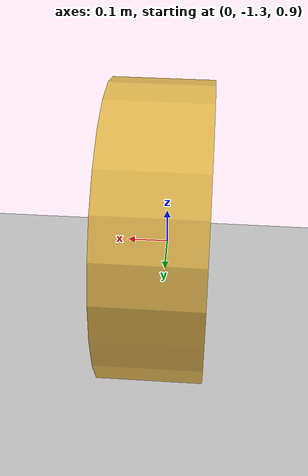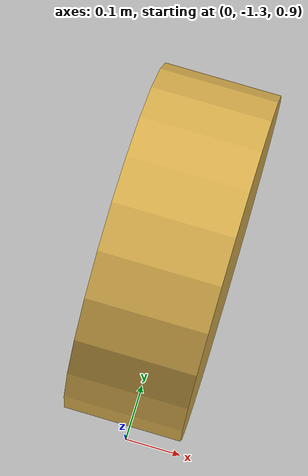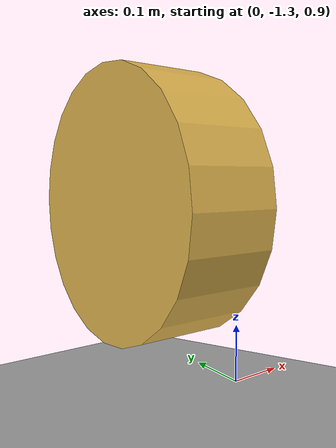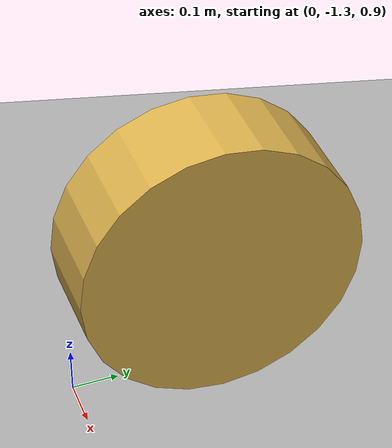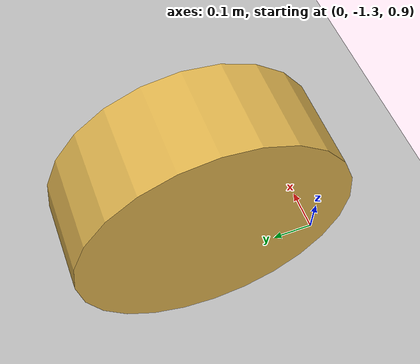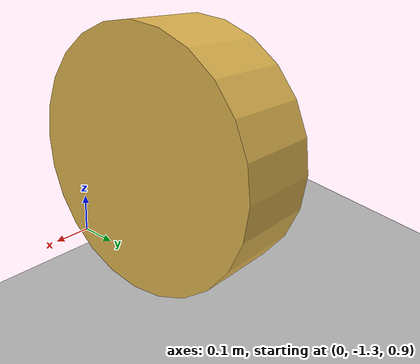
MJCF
<mujoco>
    <include file="../common/materials.xml" />
    <option timestep="0.01" iterations="100" />

    <visual>
        <headlight diffuse="0.6 0.6 0.6" ambient="0.3 0.3 0.3" specular="0 0 0"/>
        <global azimuth="-130" elevation="-20"/>
    </visual>

    <asset>
        <texture type="2d" name="groundplane" builtin="checker" mark="edge" rgb1="0.4314 0.5294 0.6431" rgb2="0.8157 0.8549 0.9059"
        markrgb="0.8 0.8 0.8" width="300" height="300"/>
        <material name="groundplane" texture="groundplane" texuniform="true" texrepeat="1 1" reflectance="0.2"/>
        <texture type="2d" name="cylinder_checker" builtin="checker" mark="edge"
                 rgb1="1 1 1" rgb2="0.8 0.1 0.1" markrgb="0.5 0.5 0.5"
                 width="200" height="200"/>
        <material name="cylinder_mat" texture="cylinder_checker" texrepeat="4 1"/>
    </asset>

    <worldbody>
        <light pos="0 0 1.5" dir="0 0 -1" directional="true"/>

        <!-- Ground plane -->
        <geom name="floor" pos="0 0 -1" size="0 0 0.01" type="plane" material="motphys-ground" />

        <!-- Inclined plane (slope) - 30 degree angle -->
        <geom name="slope" type="box" size="2 0.05 2" rgba="0.7 0.7 0.7 1" euler="80 0 0" pos="0 0 0"/>

        <!-- Cylinder that will roll down the slope -->
        <!-- Positioned at the top of the slope -->
        <body name="cylinder" pos="0 -1 1.2" euler="0 90 0">
            <!-- Free joint allows full 6DOF motion -->
            <freejoint />
            <!-- Cylinder geometry: radius 0.3, height 0.5 -->
            <!-- Size is (radius, half_height) -->
            <geom name="cylinder_geom" type="cylinder" size="0.3 0.1" material="cylinder_mat" rgba="0.8588 0.6941 0.302 1"
                contype="1" conaffinity="1" priority="1" friction="0.8 0.005 0.0001" />
        </body>
    </worldbody>
</mujoco>

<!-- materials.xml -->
<!--
Common textures, colors and materials to be used throughout this suite. Some
materials such as xxx_highlight are activated on occurence of certain events,
for example receiving a positive reward.
-->
<mujoco>
  <asset>
    <texture name="motphys-ground" type="2d" file="motphys-ground.png" />
    <material name="motphys-ground" texture="motphys-ground" texuniform="true"
      texrepeat="0.4 0.4" />
  </asset>
</mujoco>
